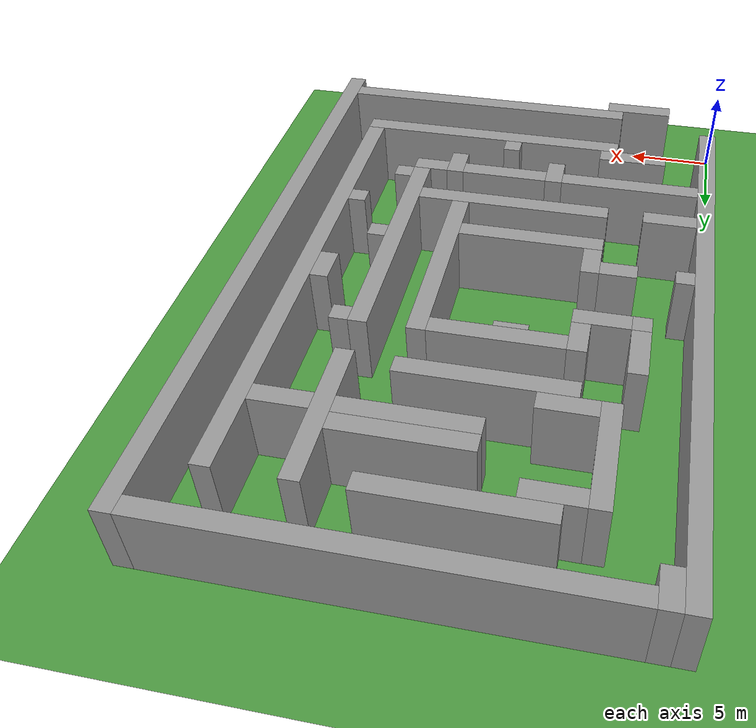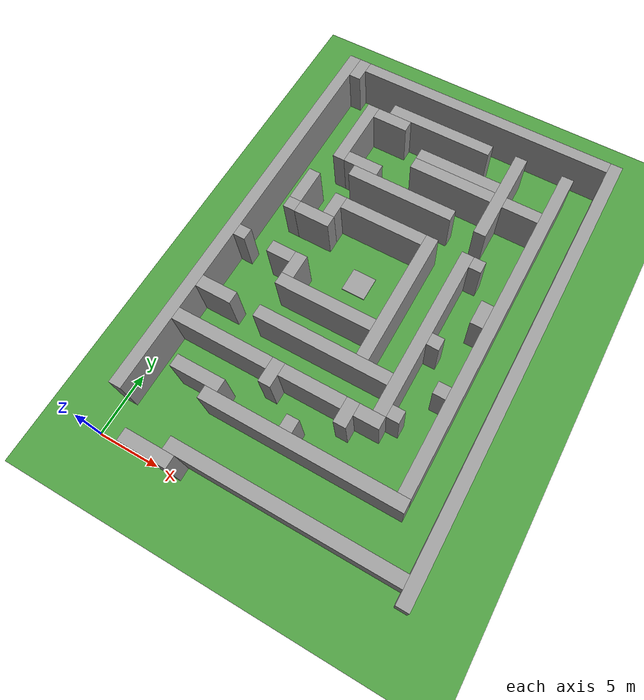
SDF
<sdf version="1.6">
 <world name="default">
  <light name="sun" type="directional">
   <pose>0 0 10 0 -0 0</pose>
   <diffuse>0.8 0.8 0.8 1</diffuse>
   <specular>0.1 0.1 0.1 1</specular>
   <attenuation>
    <range>1000</range>
    <constant>0.9</constant>
    <linear>0.01</linear>
    <quadratic>0.001</quadratic>
   </attenuation>
   <direction>-0.5 0.5 -1</direction>
  </light>
  <model name="ground_plane">
   <static>1</static>
   <link name="link">
    <collision name="collision">
     <geometry><plane><normal>0 0 1</normal><size>100 100</size></plane></geometry>
     <surface><friction><ode><mu>100</mu><mu2>50</mu2></ode></friction></surface>
    </collision>
    <visual name="visual">
     <cast_shadows>0</cast_shadows>
     <geometry><plane><normal>0 0 1</normal><size>100 100</size></plane></geometry>
     <material>
      <script><uri>file://media/materials/scripts/gazebo.material</uri><name>Gazebo/Grass</name></script>
     </material>
    </visual>
   </link>
  </model>
  <gravity>0 0 -9.8</gravity>
  <magnetic_field>6e-06 2.3e-05 -4.2e-05</magnetic_field>
  <atmosphere type="adiabatic"/>
  <physics name="default_physics" default="0" type="ode">
   <max_step_size>0.004</max_step_size>
   <real_time_factor>1</real_time_factor>
   <real_time_update_rate>250</real_time_update_rate>
  </physics>
  <scene>
   <ambient>0.4 0.4 0.4 1</ambient>
   <background>0.7 0.7 0.7 1</background>
   <shadows>1</shadows>
   <sky>
    <clouds>
     <speed>0.6</speed>
     <direction>0</direction>
     <humidity>0.5</humidity>
     <mean_size>0.5</mean_size>
     <ambient>0.8 0.8 0.8 1</ambient>
    </clouds>
   </sky>
  </scene>
  <spherical_coordinates>
   <surface_model>EARTH_WGS84</surface_model>
   <latitude_deg>0</latitude_deg>
   <longitude_deg>0</longitude_deg>
   <elevation>0</elevation>
   <heading_deg>0</heading_deg>
  </spherical_coordinates>
  <model name="wall">
   <pose>5.000000 0.500000 2 0 0 0</pose>
   <static>1</static>
   <link name="wall-link">
    <collision name="collision"><geometry><box><size>4 1 4</size></box></geometry></collision>
    <visual name="visual">
     <geometry><box><size>4 1 4</size></box></geometry>
     <material>
      <script><name>Gazebo/Grey</name><uri>file://media/materials/scripts/gazebo.material</uri></script>
     </material>
    </visual>
    <gravity>0</gravity>
   </link>
  </model>
  <model name="wall">
   <pose>24.500000 18.500000 2 0 0 0</pose>
   <static>1</static>
   <link name="wall-link">
    <collision name="collision"><geometry><box><size>1 37 4</size></box></geometry></collision>
    <visual name="visual">
     <geometry><box><size>1 37 4</size></box></geometry>
     <material>
      <script><name>Gazebo/Grey</name><uri>file://media/materials/scripts/gazebo.material</uri></script>
     </material>
    </visual>
    <gravity>0</gravity>
   </link>
  </model>
  <model name="wall">
   <pose>15.000000 1.500000 2 0 0 0</pose>
   <static>1</static>
   <link name="wall-link">
    <collision name="collision"><geometry><box><size>18 1 4</size></box></geometry></collision>
    <visual name="visual">
     <geometry><box><size>18 1 4</size></box></geometry>
     <material>
      <script><name>Gazebo/Grey</name><uri>file://media/materials/scripts/gazebo.material</uri></script>
     </material>
    </visual>
    <gravity>0</gravity>
   </link>
  </model>
  <model name="wall">
   <pose>0.500000 20.000000 2 0 0 0</pose>
   <static>1</static>
   <link name="wall-link">
    <collision name="collision"><geometry><box><size>1 34 4</size></box></geometry></collision>
    <visual name="visual">
     <geometry><box><size>1 34 4</size></box></geometry>
     <material>
      <script><name>Gazebo/Grey</name><uri>file://media/materials/scripts/gazebo.material</uri></script>
     </material>
    </visual>
    <gravity>0</gravity>
   </link>
  </model>
  <model name="wall">
   <pose>14.000000 5.500000 2 0 0 0</pose>
   <static>1</static>
   <link name="wall-link">
    <collision name="collision"><geometry><box><size>16 1 4</size></box></geometry></collision>
    <visual name="visual">
     <geometry><box><size>16 1 4</size></box></geometry>
     <material>
      <script><name>Gazebo/Grey</name><uri>file://media/materials/scripts/gazebo.material</uri></script>
     </material>
    </visual>
    <gravity>0</gravity>
   </link>
  </model>
  <model name="wall">
   <pose>5.000000 6.500000 2 0 0 0</pose>
   <static>1</static>
   <link name="wall-link">
    <collision name="collision"><geometry><box><size>4 1 4</size></box></geometry></collision>
    <visual name="visual">
     <geometry><box><size>4 1 4</size></box></geometry>
     <material>
      <script><name>Gazebo/Grey</name><uri>file://media/materials/scripts/gazebo.material</uri></script>
     </material>
    </visual>
    <gravity>0</gravity>
   </link>
  </model>
  <model name="wall">
   <pose>12.500000 6.500000 2 0 0 0</pose>
   <static>1</static>
   <link name="wall-link">
    <collision name="collision"><geometry><box><size>1 1 4</size></box></geometry></collision>
    <visual name="visual">
     <geometry><box><size>1 1 4</size></box></geometry>
     <material>
      <script><name>Gazebo/Grey</name><uri>file://media/materials/scripts/gazebo.material</uri></script>
     </material>
    </visual>
    <gravity>0</gravity>
   </link>
  </model>
  <model name="wall">
   <pose>21.500000 20.000000 2 0 0 0</pose>
   <static>1</static>
   <link name="wall-link">
    <collision name="collision"><geometry><box><size>1 28 4</size></box></geometry></collision>
    <visual name="visual">
     <geometry><box><size>1 28 4</size></box></geometry>
     <material>
      <script><name>Gazebo/Grey</name><uri>file://media/materials/scripts/gazebo.material</uri></script>
     </material>
    </visual>
    <gravity>0</gravity>
   </link>
  </model>
  <model name="wall">
   <pose>9.500000 9.000000 2 0 0 0</pose>
   <static>1</static>
   <link name="wall-link">
    <collision name="collision"><geometry><box><size>1 2 4</size></box></geometry></collision>
    <visual name="visual">
     <geometry><box><size>1 2 4</size></box></geometry>
     <material>
      <script><name>Gazebo/Grey</name><uri>file://media/materials/scripts/gazebo.material</uri></script>
     </material>
    </visual>
    <gravity>0</gravity>
   </link>
  </model>
  <model name="wall">
   <pose>15.500000 9.000000 2 0 0 0</pose>
   <static>1</static>
   <link name="wall-link">
    <collision name="collision"><geometry><box><size>1 2 4</size></box></geometry></collision>
    <visual name="visual">
     <geometry><box><size>1 2 4</size></box></geometry>
     <material>
      <script><name>Gazebo/Grey</name><uri>file://media/materials/scripts/gazebo.material</uri></script>
     </material>
    </visual>
    <gravity>0</gravity>
   </link>
  </model>
  <model name="wall">
   <pose>5.000000 9.500000 2 0 0 0</pose>
   <static>1</static>
   <link name="wall-link">
    <collision name="collision"><geometry><box><size>8 1 4</size></box></geometry></collision>
    <visual name="visual">
     <geometry><box><size>8 1 4</size></box></geometry>
     <material>
      <script><name>Gazebo/Grey</name><uri>file://media/materials/scripts/gazebo.material</uri></script>
     </material>
    </visual>
    <gravity>0</gravity>
   </link>
  </model>
  <model name="wall">
   <pose>12.500000 9.500000 2 0 0 0</pose>
   <static>1</static>
   <link name="wall-link">
    <collision name="collision"><geometry><box><size>5 1 4</size></box></geometry></collision>
    <visual name="visual">
     <geometry><box><size>5 1 4</size></box></geometry>
     <material>
      <script><name>Gazebo/Grey</name><uri>file://media/materials/scripts/gazebo.material</uri></script>
     </material>
    </visual>
    <gravity>0</gravity>
   </link>
  </model>
  <model name="wall">
   <pose>17.000000 9.500000 2 0 0 0</pose>
   <static>1</static>
   <link name="wall-link">
    <collision name="collision"><geometry><box><size>2 1 4</size></box></geometry></collision>
    <visual name="visual">
     <geometry><box><size>2 1 4</size></box></geometry>
     <material>
      <script><name>Gazebo/Grey</name><uri>file://media/materials/scripts/gazebo.material</uri></script>
     </material>
    </visual>
    <gravity>0</gravity>
   </link>
  </model>
  <model name="wall">
   <pose>17.500000 17.000000 2 0 0 0</pose>
   <static>1</static>
   <link name="wall-link">
    <collision name="collision"><geometry><box><size>1 14 4</size></box></geometry></collision>
    <visual name="visual">
     <geometry><box><size>1 14 4</size></box></geometry>
     <material>
      <script><name>Gazebo/Grey</name><uri>file://media/materials/scripts/gazebo.material</uri></script>
     </material>
    </visual>
    <gravity>0</gravity>
   </link>
  </model>
  <model name="wall">
   <pose>18.500000 10.500000 2 0 0 0</pose>
   <static>1</static>
   <link name="wall-link">
    <collision name="collision"><geometry><box><size>1 1 4</size></box></geometry></collision>
    <visual name="visual">
     <geometry><box><size>1 1 4</size></box></geometry>
     <material>
      <script><name>Gazebo/Grey</name><uri>file://media/materials/scripts/gazebo.material</uri></script>
     </material>
    </visual>
    <gravity>0</gravity>
   </link>
  </model>
  <model name="wall">
   <pose>2.500000 12.500000 2 0 0 0</pose>
   <static>1</static>
   <link name="wall-link">
    <collision name="collision"><geometry><box><size>3 1 4</size></box></geometry></collision>
    <visual name="visual">
     <geometry><box><size>3 1 4</size></box></geometry>
     <material>
      <script><name>Gazebo/Grey</name><uri>file://media/materials/scripts/gazebo.material</uri></script>
     </material>
    </visual>
    <gravity>0</gravity>
   </link>
  </model>
  <model name="wall">
   <pose>11.500000 12.500000 2 0 0 0</pose>
   <static>1</static>
   <link name="wall-link">
    <collision name="collision"><geometry><box><size>11 1 4</size></box></geometry></collision>
    <visual name="visual">
     <geometry><box><size>11 1 4</size></box></geometry>
     <material>
      <script><name>Gazebo/Grey</name><uri>file://media/materials/scripts/gazebo.material</uri></script>
     </material>
    </visual>
    <gravity>0</gravity>
   </link>
  </model>
  <model name="wall">
   <pose>14.500000 18.500000 2 0 0 0</pose>
   <static>1</static>
   <link name="wall-link">
    <collision name="collision"><geometry><box><size>1 11 4</size></box></geometry></collision>
    <visual name="visual">
     <geometry><box><size>1 11 4</size></box></geometry>
     <material>
      <script><name>Gazebo/Grey</name><uri>file://media/materials/scripts/gazebo.material</uri></script>
     </material>
    </visual>
    <gravity>0</gravity>
   </link>
  </model>
  <model name="wall">
   <pose>20.500000 13.500000 2 0 0 0</pose>
   <static>1</static>
   <link name="wall-link">
    <collision name="collision"><geometry><box><size>1 1 4</size></box></geometry></collision>
    <visual name="visual">
     <geometry><box><size>1 1 4</size></box></geometry>
     <material>
      <script><name>Gazebo/Grey</name><uri>file://media/materials/scripts/gazebo.material</uri></script>
     </material>
    </visual>
    <gravity>0</gravity>
   </link>
  </model>
  <model name="wall">
   <pose>10.000000 15.500000 2 0 0 0</pose>
   <static>1</static>
   <link name="wall-link">
    <collision name="collision"><geometry><box><size>8 1 4</size></box></geometry></collision>
    <visual name="visual">
     <geometry><box><size>8 1 4</size></box></geometry>
     <material>
      <script><name>Gazebo/Grey</name><uri>file://media/materials/scripts/gazebo.material</uri></script>
     </material>
    </visual>
    <gravity>0</gravity>
   </link>
  </model>
  <model name="wall">
   <pose>6.500000 17.000000 2 0 0 0</pose>
   <static>1</static>
   <link name="wall-link">
    <collision name="collision"><geometry><box><size>1 2 4</size></box></geometry></collision>
    <visual name="visual">
     <geometry><box><size>1 2 4</size></box></geometry>
     <material>
      <script><name>Gazebo/Grey</name><uri>file://media/materials/scripts/gazebo.material</uri></script>
     </material>
    </visual>
    <gravity>0</gravity>
   </link>
  </model>
  <model name="wall">
   <pose>18.500000 16.500000 2 0 0 0</pose>
   <static>1</static>
   <link name="wall-link">
    <collision name="collision"><geometry><box><size>1 1 4</size></box></geometry></collision>
    <visual name="visual">
     <geometry><box><size>1 1 4</size></box></geometry>
     <material>
      <script><name>Gazebo/Grey</name><uri>file://media/materials/scripts/gazebo.material</uri></script>
     </material>
    </visual>
    <gravity>0</gravity>
   </link>
  </model>
  <model name="wall">
   <pose>1.500000 17.500000 2 0 0 0</pose>
   <static>1</static>
   <link name="wall-link">
    <collision name="collision"><geometry><box><size>1 1 4</size></box></geometry></collision>
    <visual name="visual">
     <geometry><box><size>1 1 4</size></box></geometry>
     <material>
      <script><name>Gazebo/Grey</name><uri>file://media/materials/scripts/gazebo.material</uri></script>
     </material>
    </visual>
    <gravity>0</gravity>
   </link>
  </model>
  <model name="wall">
   <pose>5.000000 17.500000 2 0 0 0</pose>
   <static>1</static>
   <link name="wall-link">
    <collision name="collision"><geometry><box><size>2 1 4</size></box></geometry></collision>
    <visual name="visual">
     <geometry><box><size>2 1 4</size></box></geometry>
     <material>
      <script><name>Gazebo/Grey</name><uri>file://media/materials/scripts/gazebo.material</uri></script>
     </material>
    </visual>
    <gravity>0</gravity>
   </link>
  </model>
  <model name="wall">
   <pose>20.500000 20.000000 2 0 0 0</pose>
   <static>1</static>
   <link name="wall-link">
    <collision name="collision"><geometry><box><size>1 2 4</size></box></geometry></collision>
    <visual name="visual">
     <geometry><box><size>1 2 4</size></box></geometry>
     <material>
      <script><name>Gazebo/Grey</name><uri>file://media/materials/scripts/gazebo.material</uri></script>
     </material>
    </visual>
    <gravity>0</gravity>
   </link>
  </model>
  <model name="wall">
   <pose>3.500000 21.500000 2 0 0 0</pose>
   <static>1</static>
   <link name="wall-link">
    <collision name="collision"><geometry><box><size>1 1 4</size></box></geometry></collision>
    <visual name="visual">
     <geometry><box><size>1 1 4</size></box></geometry>
     <material>
      <script><name>Gazebo/Grey</name><uri>file://media/materials/scripts/gazebo.material</uri></script>
     </material>
    </visual>
    <gravity>0</gravity>
   </link>
  </model>
  <model name="wall">
   <pose>5.500000 21.500000 2 0 0 0</pose>
   <static>1</static>
   <link name="wall-link">
    <collision name="collision"><geometry><box><size>3 1 4</size></box></geometry></collision>
    <visual name="visual">
     <geometry><box><size>3 1 4</size></box></geometry>
     <material>
      <script><name>Gazebo/Grey</name><uri>file://media/materials/scripts/gazebo.material</uri></script>
     </material>
    </visual>
    <gravity>0</gravity>
   </link>
  </model>
  <model name="wall">
   <pose>3.500000 23.500000 2 0 0 0</pose>
   <static>1</static>
   <link name="wall-link">
    <collision name="collision"><geometry><box><size>1 3 4</size></box></geometry></collision>
    <visual name="visual">
     <geometry><box><size>1 3 4</size></box></geometry>
     <material>
      <script><name>Gazebo/Grey</name><uri>file://media/materials/scripts/gazebo.material</uri></script>
     </material>
    </visual>
    <gravity>0</gravity>
   </link>
  </model>
  <model name="wall">
   <pose>6.500000 23.000000 2 0 0 0</pose>
   <static>1</static>
   <link name="wall-link">
    <collision name="collision"><geometry><box><size>1 2 4</size></box></geometry></collision>
    <visual name="visual">
     <geometry><box><size>1 2 4</size></box></geometry>
     <material>
      <script><name>Gazebo/Grey</name><uri>file://media/materials/scripts/gazebo.material</uri></script>
     </material>
    </visual>
    <gravity>0</gravity>
   </link>
  </model>
  <model name="wall">
   <pose>10.500000 23.500000 2 0 0 0</pose>
   <static>1</static>
   <link name="wall-link">
    <collision name="collision"><geometry><box><size>7 1 4</size></box></geometry></collision>
    <visual name="visual">
     <geometry><box><size>7 1 4</size></box></geometry>
     <material>
      <script><name>Gazebo/Grey</name><uri>file://media/materials/scripts/gazebo.material</uri></script>
     </material>
    </visual>
    <gravity>0</gravity>
   </link>
  </model>
  <model name="wall">
   <pose>18.500000 23.500000 2 0 0 0</pose>
   <static>1</static>
   <link name="wall-link">
    <collision name="collision"><geometry><box><size>1 1 4</size></box></geometry></collision>
    <visual name="visual">
     <geometry><box><size>1 1 4</size></box></geometry>
     <material>
      <script><name>Gazebo/Grey</name><uri>file://media/materials/scripts/gazebo.material</uri></script>
     </material>
    </visual>
    <gravity>0</gravity>
   </link>
  </model>
  <model name="wall">
   <pose>10.500000 26.500000 2 0 0 0</pose>
   <static>1</static>
   <link name="wall-link">
    <collision name="collision"><geometry><box><size>9 1 4</size></box></geometry></collision>
    <visual name="visual">
     <geometry><box><size>9 1 4</size></box></geometry>
     <material>
      <script><name>Gazebo/Grey</name><uri>file://media/materials/scripts/gazebo.material</uri></script>
     </material>
    </visual>
    <gravity>0</gravity>
   </link>
  </model>
  <model name="wall">
   <pose>17.500000 30.000000 2 0 0 0</pose>
   <static>1</static>
   <link name="wall-link">
    <collision name="collision"><geometry><box><size>1 8 4</size></box></geometry></collision>
    <visual name="visual">
     <geometry><box><size>1 8 4</size></box></geometry>
     <material>
      <script><name>Gazebo/Grey</name><uri>file://media/materials/scripts/gazebo.material</uri></script>
     </material>
    </visual>
    <gravity>0</gravity>
   </link>
  </model>
  <model name="wall">
   <pose>4.500000 30.000000 2 0 0 0</pose>
   <static>1</static>
   <link name="wall-link">
    <collision name="collision"><geometry><box><size>1 6 4</size></box></geometry></collision>
    <visual name="visual">
     <geometry><box><size>1 6 4</size></box></geometry>
     <material>
      <script><name>Gazebo/Grey</name><uri>file://media/materials/scripts/gazebo.material</uri></script>
     </material>
    </visual>
    <gravity>0</gravity>
   </link>
  </model>
  <model name="wall">
   <pose>6.500000 27.500000 2 0 0 0</pose>
   <static>1</static>
   <link name="wall-link">
    <collision name="collision"><geometry><box><size>3 1 4</size></box></geometry></collision>
    <visual name="visual">
     <geometry><box><size>3 1 4</size></box></geometry>
     <material>
      <script><name>Gazebo/Grey</name><uri>file://media/materials/scripts/gazebo.material</uri></script>
     </material>
    </visual>
    <gravity>0</gravity>
   </link>
  </model>
  <model name="wall">
   <pose>13.500000 29.500000 2 0 0 0</pose>
   <static>1</static>
   <link name="wall-link">
    <collision name="collision"><geometry><box><size>7 1 4</size></box></geometry></collision>
    <visual name="visual">
     <geometry><box><size>7 1 4</size></box></geometry>
     <material>
      <script><name>Gazebo/Grey</name><uri>file://media/materials/scripts/gazebo.material</uri></script>
     </material>
    </visual>
    <gravity>0</gravity>
   </link>
  </model>
  <model name="wall">
   <pose>19.500000 29.500000 2 0 0 0</pose>
   <static>1</static>
   <link name="wall-link">
    <collision name="collision"><geometry><box><size>3 1 4</size></box></geometry></collision>
    <visual name="visual">
     <geometry><box><size>3 1 4</size></box></geometry>
     <material>
      <script><name>Gazebo/Grey</name><uri>file://media/materials/scripts/gazebo.material</uri></script>
     </material>
    </visual>
    <gravity>0</gravity>
   </link>
  </model>
  <model name="wall">
   <pose>13.500000 30.500000 2 0 0 0</pose>
   <static>1</static>
   <link name="wall-link">
    <collision name="collision"><geometry><box><size>7 1 4</size></box></geometry></collision>
    <visual name="visual">
     <geometry><box><size>7 1 4</size></box></geometry>
     <material>
      <script><name>Gazebo/Grey</name><uri>file://media/materials/scripts/gazebo.material</uri></script>
     </material>
    </visual>
    <gravity>0</gravity>
   </link>
  </model>
  <model name="wall">
   <pose>6.500000 32.500000 2 0 0 0</pose>
   <static>1</static>
   <link name="wall-link">
    <collision name="collision"><geometry><box><size>3 1 4</size></box></geometry></collision>
    <visual name="visual">
     <geometry><box><size>3 1 4</size></box></geometry>
     <material>
      <script><name>Gazebo/Grey</name><uri>file://media/materials/scripts/gazebo.material</uri></script>
     </material>
    </visual>
    <gravity>0</gravity>
   </link>
  </model>
  <model name="wall">
   <pose>10.500000 33.500000 2 0 0 0</pose>
   <static>1</static>
   <link name="wall-link">
    <collision name="collision"><geometry><box><size>9 1 4</size></box></geometry></collision>
    <visual name="visual">
     <geometry><box><size>9 1 4</size></box></geometry>
     <material>
      <script><name>Gazebo/Grey</name><uri>file://media/materials/scripts/gazebo.material</uri></script>
     </material>
    </visual>
    <gravity>0</gravity>
   </link>
  </model>
  <model name="wall">
   <pose>1.500000 36.000000 2 0 0 0</pose>
   <static>1</static>
   <link name="wall-link">
    <collision name="collision"><geometry><box><size>1 2 4</size></box></geometry></collision>
    <visual name="visual">
     <geometry><box><size>1 2 4</size></box></geometry>
     <material>
      <script><name>Gazebo/Grey</name><uri>file://media/materials/scripts/gazebo.material</uri></script>
     </material>
    </visual>
    <gravity>0</gravity>
   </link>
  </model>
  <model name="wall">
   <pose>13.000000 36.500000 2 0 0 0</pose>
   <static>1</static>
   <link name="wall-link">
    <collision name="collision"><geometry><box><size>22 1 4</size></box></geometry></collision>
    <visual name="visual">
     <geometry><box><size>22 1 4</size></box></geometry>
     <material>
      <script><name>Gazebo/Grey</name><uri>file://media/materials/scripts/gazebo.material</uri></script>
     </material>
    </visual>
    <gravity>0</gravity>
   </link>
  </model>
  <model name="goal">
   <pose>10.5 19.5 0.05 0 -0 0</pose>
   <static>1</static>
   <link name="link">
    <collision name="collision"><geometry><box><size>2.0 2.0 0.1</size></box></geometry></collision>
    <visual name="visual">
     <geometry><box><size>2.0 2.0 0.1</size></box></geometry>
     <material>
      <script><name>Gazebo/Grey</name><uri>file://media/materials/scripts/gazebo.material</uri></script>
     </material>
    </visual>
   </link>
  </model>
 </world>
</sdf>
